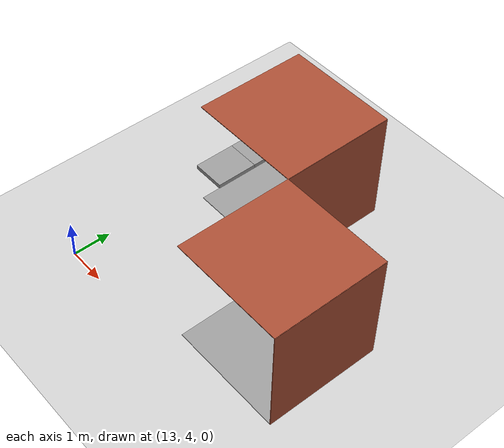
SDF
<sdf version="1.6">
 <world name="default">
  <model name="ground_plane">
   <static>1</static>
   <link name="link">
    <collision name="collision">
     <geometry><plane><normal>0 0 1</normal><size>200 200</size></plane></geometry>
     <surface><friction><ode><mu>100</mu><mu2>50</mu2></ode></friction></surface>
    </collision>
    <visual name="visual">
     <cast_shadows>0</cast_shadows>
     <geometry><plane><normal>0 0 1</normal><size>200 200</size></plane></geometry>
     <material>
      <script><uri>file://media/materials/scripts/gazebo.material</uri><name>Gazebo/Grey</name></script>
     </material>
    </visual>
   </link>
  </model>
  <model name="wall_front_5_3_0_2">
   <static>1</static>
   <pose>16.5 9.0 1.5 0.0 0.0 -1.57</pose>
   <link name="link">
    <collision name="collision"><geometry><box><size>3 0.02 3</size></box></geometry></collision>
    <visual name="visual">
     <material>
      <script><name>Gazebo/Bricks</name><uri>file://media/materials/scripts/gazebo.material</uri></script>
     </material>
     <geometry><box><size>3 0.02 3</size></box></geometry>
    </visual>
   </link>
  </model>
  <model name="wall_left_5_3_0_2">
   <static>1</static>
   <pose>15.0 10.5 1.5 0.0 0.0 0.0</pose>
   <link name="link">
    <collision name="collision"><geometry><box><size>3 0.02 3</size></box></geometry></collision>
    <visual name="visual">
     <material>
      <script><name>Gazebo/Bricks</name><uri>file://media/materials/scripts/gazebo.material</uri></script>
     </material>
     <geometry><box><size>3 0.02 3</size></box></geometry>
    </visual>
   </link>
  </model>
  <model name="wall_top_5_3_0_2">
   <static>1</static>
   <pose>15.0 9.0 3.0 1.57 0.0 -1.57</pose>
   <link name="link">
    <collision name="collision"><geometry><box><size>3 0.02 3</size></box></geometry></collision>
    <visual name="visual">
     <material>
      <script><name>Gazebo/Bricks</name><uri>file://media/materials/scripts/gazebo.material</uri></script>
     </material>
     <geometry><box><size>3 0.02 3</size></box></geometry>
    </visual>
   </link>
  </model>
  <model name="ceiling_1_5_3_1_2">
   <pose>15.0 8.0 2.55 0.0 0.0 0.0</pose>
   <link name="link_1">
    <visual name="visual">
     <geometry><box><size>0.8 1 0.1</size></box></geometry>
     <material>
      <script><uri>file://media/materials/scripts/gazebo.material</uri><name>Gazebo/Grey</name></script>
     </material>
    </visual>
    <collision name="collision"><geometry><box><size>0.8 1 0.1</size></box></geometry></collision>
   </link>
   <static>1</static>
  </model>
  <model name="wall_bottom_5_3_0_2">
   <static>1</static>
   <pose>15.0 9.0 0.0 0.0 0.0 -1.57</pose>
   <link name="link">
    <collision name="collision"><geometry><box><size>3 3 0.02</size></box></geometry></collision>
    <visual name="visual">
     <material>
      <script><name>Gazebo/Grey</name><uri>file://media/materials/scripts/gazebo.material</uri></script>
     </material>
     <geometry><box><size>3 3 0.02</size></box></geometry>
    </visual>
   </link>
  </model>
  <model name="ceiling_1_5_2_0_3">
   <pose>15.0 7.0 2.55 0.0 0.0 3.14</pose>
   <link name="link_1">
    <visual name="visual">
     <geometry><box><size>0.8 1 0.1</size></box></geometry>
     <material>
      <script><uri>file://media/materials/scripts/gazebo.material</uri><name>Gazebo/Grey</name></script>
     </material>
    </visual>
    <collision name="collision"><geometry><box><size>0.8 1 0.1</size></box></geometry></collision>
   </link>
   <static>1</static>
  </model>
  <model name="wall_front_6_2_0_2">
   <static>1</static>
   <pose>19.5 6.0 1.5 0.0 0.0 -1.57</pose>
   <link name="link">
    <collision name="collision"><geometry><box><size>3 0.02 3</size></box></geometry></collision>
    <visual name="visual">
     <material>
      <script><name>Gazebo/Bricks</name><uri>file://media/materials/scripts/gazebo.material</uri></script>
     </material>
     <geometry><box><size>3 0.02 3</size></box></geometry>
    </visual>
   </link>
  </model>
  <model name="wall_left_6_2_0_2">
   <static>1</static>
   <pose>18.0 7.5 1.5 0.0 0.0 0.0</pose>
   <link name="link">
    <collision name="collision"><geometry><box><size>3 0.02 3</size></box></geometry></collision>
    <visual name="visual">
     <material>
      <script><name>Gazebo/Bricks</name><uri>file://media/materials/scripts/gazebo.material</uri></script>
     </material>
     <geometry><box><size>3 0.02 3</size></box></geometry>
    </visual>
   </link>
  </model>
  <model name="wall_top_6_2_0_2">
   <static>1</static>
   <pose>18.0 6.0 3.0 1.57 0.0 -1.57</pose>
   <link name="link">
    <collision name="collision"><geometry><box><size>3 0.02 3</size></box></geometry></collision>
    <visual name="visual">
     <material>
      <script><name>Gazebo/Bricks</name><uri>file://media/materials/scripts/gazebo.material</uri></script>
     </material>
     <geometry><box><size>3 0.02 3</size></box></geometry>
    </visual>
   </link>
  </model>
  <model name="ceiling_1_6_2_0_2">
   <pose>17.0 6.0 2.55 0.0 0.0 -1.57</pose>
   <link name="link_1">
    <visual name="visual">
     <geometry><box><size>0.8 1 0.1</size></box></geometry>
     <material>
      <script><uri>file://media/materials/scripts/gazebo.material</uri><name>Gazebo/Grey</name></script>
     </material>
    </visual>
    <collision name="collision"><geometry><box><size>0.8 1 0.1</size></box></geometry></collision>
   </link>
   <static>1</static>
  </model>
  <model name="bookshelf_6_2_0_2">
   <static>true</static>
   <pose>18.663503850525 7.35 0.0 0.0 0.0 -1.57</pose>
   <link name="link">
    <pose>0 0 0 0 0 -1.57</pose>
    <inertial><mass>1.0</mass></inertial>
    <collision name="back">
     <pose>0 0.005 0.6 0 0 0</pose>
     <geometry><box><size>0.9 0.01 1.2</size></box></geometry>
    </collision>
    <visual name="visual1">
     <pose>0 0.005 0.6 0 0 0</pose>
     <geometry><box><size>0.9 0.01 1.2</size></box></geometry>
     <material>
      <script><uri>file://media/materials/scripts/gazebo.material</uri><name>Gazebo/Wood</name></script>
     </material>
    </visual>
    <collision name="left_side">
     <pose>0.45 -0.195 0.6 0 0 0</pose>
     <geometry><box><size>0.02 0.4 1.2</size></box></geometry>
    </collision>
    <visual name="visual2">
     <pose>0.45 -0.195 0.6 0 0 0</pose>
     <geometry><box><size>0.02 0.4 1.2</size></box></geometry>
     <material>
      <script><uri>file://media/materials/scripts/gazebo.material</uri><name>Gazebo/Wood</name></script>
     </material>
    </visual>
    <collision name="right_side">
     <pose>-0.45 -0.195 0.6 0 0 0</pose>
     <geometry><box><size>0.02 0.4 1.2</size></box></geometry>
    </collision>
    <visual name="visual3">
     <pose>-0.45 -0.195 0.6 0 0 0</pose>
     <geometry><box><size>0.02 0.4 1.2</size></box></geometry>
     <material>
      <script><uri>file://media/materials/scripts/gazebo.material</uri><name>Gazebo/Wood</name></script>
     </material>
    </visual>
    <collision name="bottom">
     <pose>0 -0.195 0.03 0 0 0</pose>
     <geometry><box><size>0.88 0.4 0.06</size></box></geometry>
    </collision>
    <visual name="visual4">
     <pose>0 -0.195 0.03 0 0 0</pose>
     <geometry><box><size>0.88 0.4 0.06</size></box></geometry>
     <material>
      <script><uri>file://media/materials/scripts/gazebo.material</uri><name>Gazebo/Wood</name></script>
     </material>
    </visual>
    <collision name="top">
     <pose>0 -0.195 1.19 0 0 0</pose>
     <geometry><box><size>0.88 0.4 0.02</size></box></geometry>
    </collision>
    <visual name="visual5">
     <pose>0 -0.195 1.19 0 0 0</pose>
     <geometry><box><size>0.88 0.4 0.02</size></box></geometry>
     <material>
      <script><uri>file://media/materials/scripts/gazebo.material</uri><name>Gazebo/Wood</name></script>
     </material>
    </visual>
    <collision name="low_shelf">
     <pose>0 -0.195 0.43 0 0 0</pose>
     <geometry><box><size>0.88 0.4 0.02</size></box></geometry>
    </collision>
    <visual name="visual6">
     <pose>0 -0.195 0.43 0 0 0</pose>
     <geometry><box><size>0.88 0.4 0.02</size></box></geometry>
     <material>
      <script><uri>file://media/materials/scripts/gazebo.material</uri><name>Gazebo/Wood</name></script>
     </material>
    </visual>
    <collision name="high_shelf">
     <pose>0 -0.195 0.8 0 0 0</pose>
     <geometry><box><size>0.88 0.4 0.02</size></box></geometry>
    </collision>
    <visual name="visual7">
     <pose>0 -0.195 0.8 0 0 0</pose>
     <geometry><box><size>0.88 0.4 0.02</size></box></geometry>
     <material>
      <script><uri>file://media/materials/scripts/gazebo.material</uri><name>Gazebo/Wood</name></script>
     </material>
    </visual>
   </link>
  </model>
  <model name="wall_bottom_6_2_0_2">
   <static>1</static>
   <pose>18.0 6.0 0.0 0.0 0.0 -1.57</pose>
   <link name="link">
    <collision name="collision"><geometry><box><size>3 3 0.02</size></box></geometry></collision>
    <visual name="visual">
     <material>
      <script><name>Gazebo/Grey</name><uri>file://media/materials/scripts/gazebo.material</uri></script>
     </material>
     <geometry><box><size>3 3 0.02</size></box></geometry>
    </visual>
   </link>
  </model>
 </world>
</sdf>
